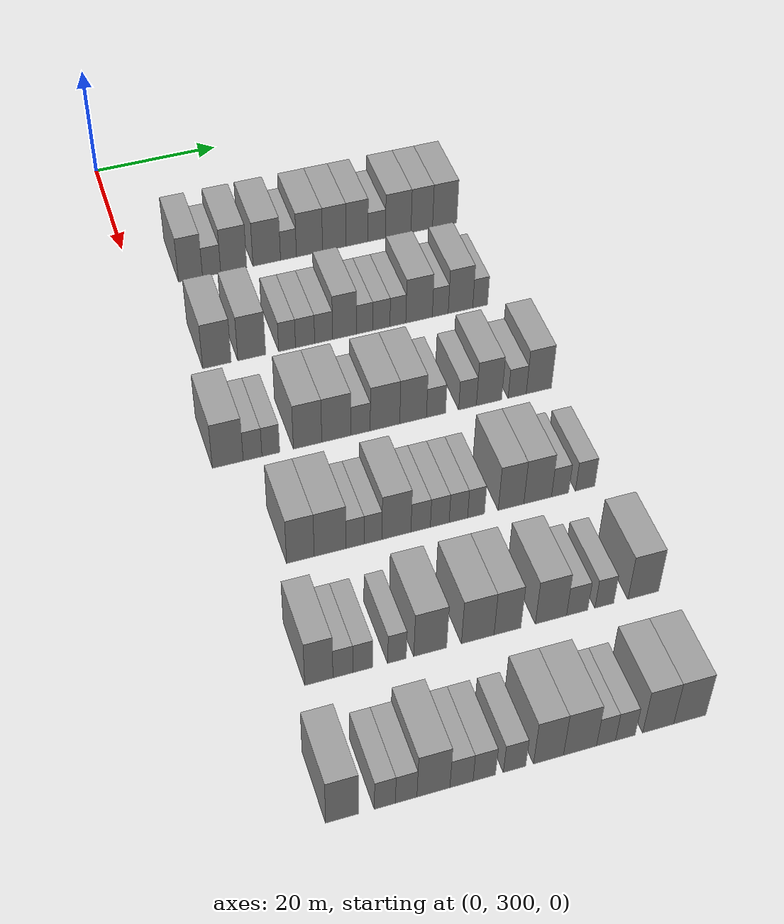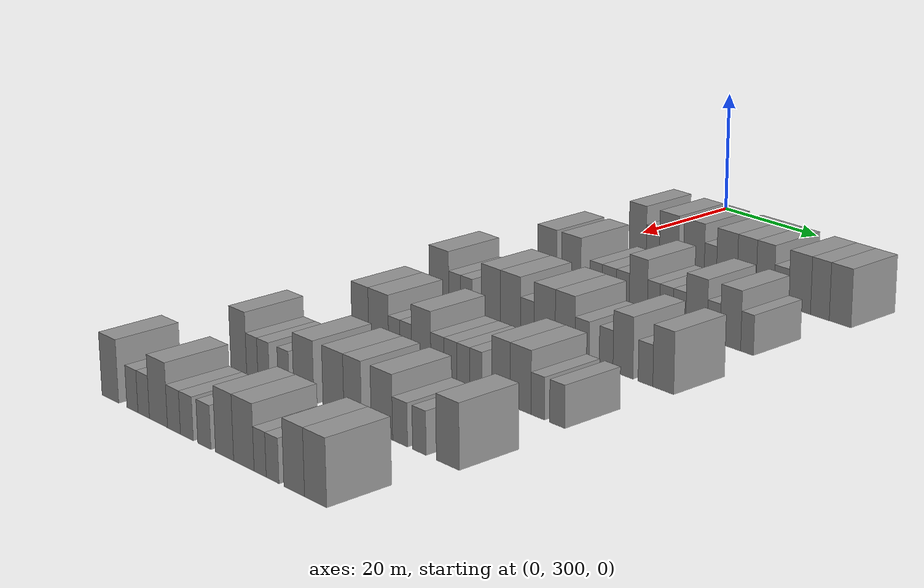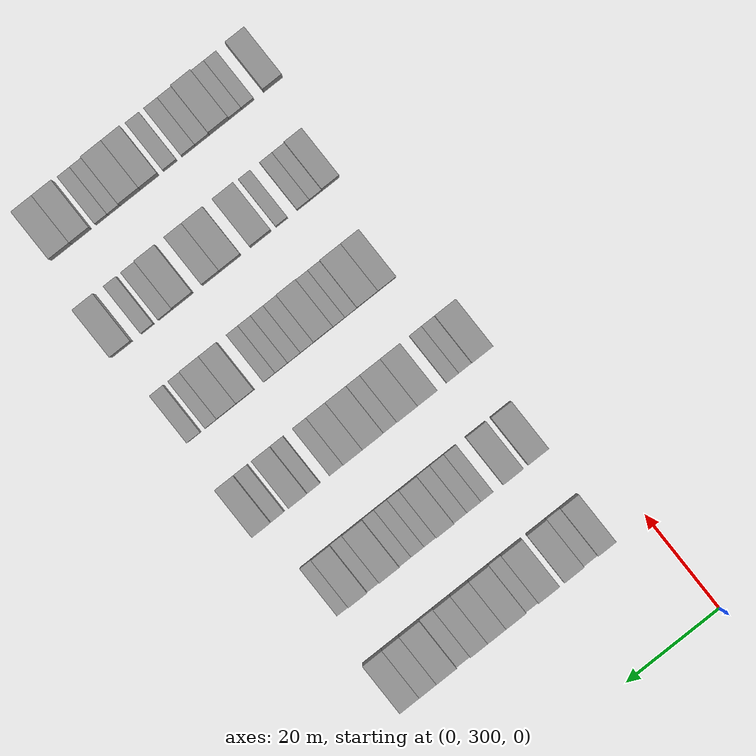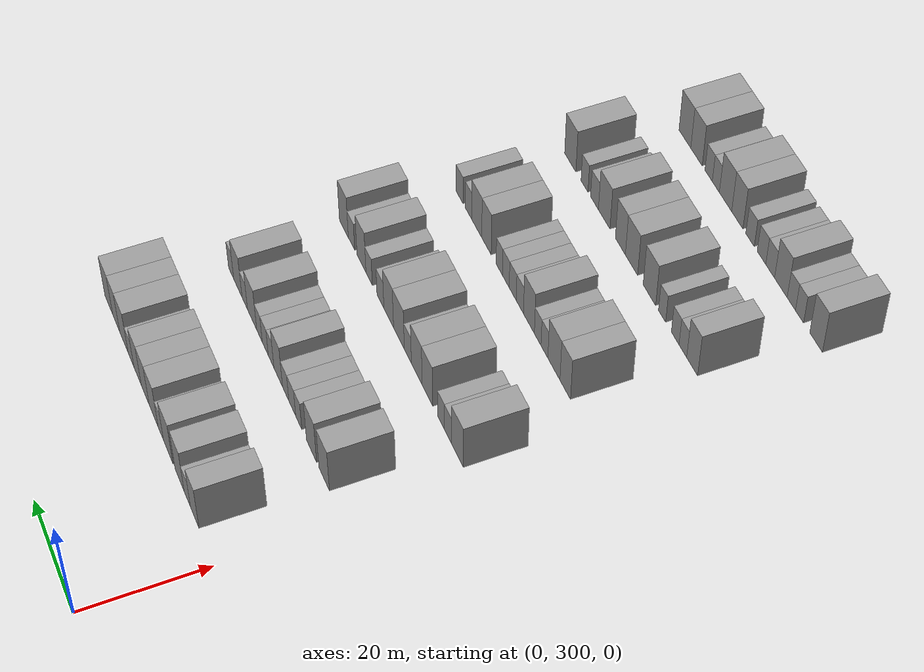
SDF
<sdf version="1.6">
 <world name="default">
  <model name="building_162">
   <static>1</static>
   <pose>25.0000 308.6975 0 0.000000 0.000000 0.000000</pose>
   <link name="link">
    <pose>0 0 4.50 0 0 0</pose>
    <collision name="collision"><geometry><box><size>10.0000 3.8196 9.0000</size></box></geometry></collision>
    <visual name="visual">
     <cast_shadows>0</cast_shadows>
     <geometry><box><size>10.0000 3.8196 9.0000</size></box></geometry>
     <material>
      <script>
       <uri>model://grey_wall/materials/scripts</uri>
       <uri>model://grey_wall/materials/textures</uri>
       <name>vrc/grey_wall</name>
      </script>
     </material>
    </visual>
   </link>
  </model>
  <model name="building_163">
   <static>1</static>
   <pose>25.0000 312.0686 0 0.000000 0.000000 0.000000</pose>
   <link name="link">
    <pose>0 0 3.00 0 0 0</pose>
    <collision name="collision"><geometry><box><size>10.0000 2.9227 6.0000</size></box></geometry></collision>
    <visual name="visual">
     <cast_shadows>0</cast_shadows>
     <geometry><box><size>10.0000 2.9227 6.0000</size></box></geometry>
     <material>
      <script>
       <uri>model://grey_wall/materials/scripts</uri>
       <uri>model://grey_wall/materials/textures</uri>
       <name>vrc/grey_wall</name>
      </script>
     </material>
    </visual>
   </link>
  </model>
  <model name="building_164">
   <static>1</static>
   <pose>25.0000 315.6222 0 0.000000 0.000000 0.000000</pose>
   <link name="link">
    <pose>0 0 4.50 0 0 0</pose>
    <collision name="collision"><geometry><box><size>10.0000 4.1845 9.0000</size></box></geometry></collision>
    <visual name="visual">
     <cast_shadows>0</cast_shadows>
     <geometry><box><size>10.0000 4.1845 9.0000</size></box></geometry>
     <material>
      <script>
       <uri>model://grey_wall/materials/scripts</uri>
       <uri>model://grey_wall/materials/textures</uri>
       <name>vrc/grey_wall</name>
      </script>
     </material>
    </visual>
   </link>
  </model>
  <model name="building_165">
   <static>1</static>
   <pose>25.0000 320.9484 0 0.000000 0.000000 0.000000</pose>
   <link name="link">
    <pose>0 0 4.50 0 0 0</pose>
    <collision name="collision"><geometry><box><size>10.0000 4.4678 9.0000</size></box></geometry></collision>
    <visual name="visual">
     <cast_shadows>0</cast_shadows>
     <geometry><box><size>10.0000 4.4678 9.0000</size></box></geometry>
     <material>
      <script>
       <uri>model://grey_wall/materials/scripts</uri>
       <uri>model://grey_wall/materials/textures</uri>
       <name>vrc/grey_wall</name>
      </script>
     </material>
    </visual>
   </link>
  </model>
  <model name="building_166">
   <static>1</static>
   <pose>25.0000 324.4764 0 0.000000 0.000000 0.000000</pose>
   <link name="link">
    <pose>0 0 3.00 0 0 0</pose>
    <collision name="collision"><geometry><box><size>10.0000 2.5881 6.0000</size></box></geometry></collision>
    <visual name="visual">
     <cast_shadows>0</cast_shadows>
     <geometry><box><size>10.0000 2.5881 6.0000</size></box></geometry>
     <material>
      <script>
       <uri>model://grey_wall/materials/scripts</uri>
       <uri>model://grey_wall/materials/textures</uri>
       <name>vrc/grey_wall</name>
      </script>
     </material>
    </visual>
   </link>
  </model>
  <model name="building_167">
   <static>1</static>
   <pose>25.0000 327.9120 0 0.000000 0.000000 0.000000</pose>
   <link name="link">
    <pose>0 0 4.50 0 0 0</pose>
    <collision name="collision"><geometry><box><size>10.0000 4.2831 9.0000</size></box></geometry></collision>
    <visual name="visual">
     <cast_shadows>0</cast_shadows>
     <geometry><box><size>10.0000 4.2831 9.0000</size></box></geometry>
     <material>
      <script>
       <uri>model://grey_wall/materials/scripts</uri>
       <uri>model://grey_wall/materials/textures</uri>
       <name>vrc/grey_wall</name>
      </script>
     </material>
    </visual>
   </link>
  </model>
  <model name="building_168">
   <static>1</static>
   <pose>25.0000 331.9893 0 0.000000 0.000000 0.000000</pose>
   <link name="link">
    <pose>0 0 4.50 0 0 0</pose>
    <collision name="collision"><geometry><box><size>10.0000 3.8714 9.0000</size></box></geometry></collision>
    <visual name="visual">
     <cast_shadows>0</cast_shadows>
     <geometry><box><size>10.0000 3.8714 9.0000</size></box></geometry>
     <material>
      <script>
       <uri>model://grey_wall/materials/scripts</uri>
       <uri>model://grey_wall/materials/textures</uri>
       <name>vrc/grey_wall</name>
      </script>
     </material>
    </visual>
   </link>
  </model>
  <model name="building_169">
   <static>1</static>
   <pose>25.0000 335.7469 0 0.000000 0.000000 0.000000</pose>
   <link name="link">
    <pose>0 0 4.50 0 0 0</pose>
    <collision name="collision"><geometry><box><size>10.0000 3.6437 9.0000</size></box></geometry></collision>
    <visual name="visual">
     <cast_shadows>0</cast_shadows>
     <geometry><box><size>10.0000 3.6437 9.0000</size></box></geometry>
     <material>
      <script>
       <uri>model://grey_wall/materials/scripts</uri>
       <uri>model://grey_wall/materials/textures</uri>
       <name>vrc/grey_wall</name>
      </script>
     </material>
    </visual>
   </link>
  </model>
  <model name="building_170">
   <static>1</static>
   <pose>25.0000 339.0179 0 0.000000 0.000000 0.000000</pose>
   <link name="link">
    <pose>0 0 3.00 0 0 0</pose>
    <collision name="collision"><geometry><box><size>10.0000 2.8984 6.0000</size></box></geometry></collision>
    <visual name="visual">
     <cast_shadows>0</cast_shadows>
     <geometry><box><size>10.0000 2.8984 6.0000</size></box></geometry>
     <material>
      <script>
       <uri>model://grey_wall/materials/scripts</uri>
       <uri>model://grey_wall/materials/textures</uri>
       <name>vrc/grey_wall</name>
      </script>
     </material>
    </visual>
   </link>
  </model>
  <model name="building_171">
   <static>1</static>
   <pose>25.0000 342.6101 0 0.000000 0.000000 0.000000</pose>
   <link name="link">
    <pose>0 0 4.50 0 0 0</pose>
    <collision name="collision"><geometry><box><size>10.0000 4.2859 9.0000</size></box></geometry></collision>
    <visual name="visual">
     <cast_shadows>0</cast_shadows>
     <geometry><box><size>10.0000 4.2859 9.0000</size></box></geometry>
     <material>
      <script>
       <uri>model://grey_wall/materials/scripts</uri>
       <uri>model://grey_wall/materials/textures</uri>
       <name>vrc/grey_wall</name>
      </script>
     </material>
    </visual>
   </link>
  </model>
  <model name="building_172">
   <static>1</static>
   <pose>25.0000 346.5654 0 0.000000 0.000000 0.000000</pose>
   <link name="link">
    <pose>0 0 4.50 0 0 0</pose>
    <collision name="collision"><geometry><box><size>10.0000 3.6248 9.0000</size></box></geometry></collision>
    <visual name="visual">
     <cast_shadows>0</cast_shadows>
     <geometry><box><size>10.0000 3.6248 9.0000</size></box></geometry>
     <material>
      <script>
       <uri>model://grey_wall/materials/scripts</uri>
       <uri>model://grey_wall/materials/textures</uri>
       <name>vrc/grey_wall</name>
      </script>
     </material>
    </visual>
   </link>
  </model>
  <model name="building_173">
   <static>1</static>
   <pose>25.0000 350.4353 0 0.000000 0.000000 0.000000</pose>
   <link name="link">
    <pose>0 0 4.50 0 0 0</pose>
    <collision name="collision"><geometry><box><size>10.0000 4.1149 9.0000</size></box></geometry></collision>
    <visual name="visual">
     <cast_shadows>0</cast_shadows>
     <geometry><box><size>10.0000 4.1149 9.0000</size></box></geometry>
     <material>
      <script>
       <uri>model://grey_wall/materials/scripts</uri>
       <uri>model://grey_wall/materials/textures</uri>
       <name>vrc/grey_wall</name>
      </script>
     </material>
    </visual>
   </link>
  </model>
  <model name="building_340">
   <static>1</static>
   <pose>44.0000 308.1091 0 0.000000 0.000000 0.000000</pose>
   <link name="link">
    <pose>0 0 4.50 0 0 0</pose>
    <collision name="collision"><geometry><box><size>10.0000 4.3474 9.0000</size></box></geometry></collision>
    <visual name="visual">
     <cast_shadows>0</cast_shadows>
     <geometry><box><size>10.0000 4.3474 9.0000</size></box></geometry>
     <material>
      <script>
       <uri>model://grey_wall/materials/scripts</uri>
       <uri>model://grey_wall/materials/textures</uri>
       <name>vrc/grey_wall</name>
      </script>
     </material>
    </visual>
   </link>
  </model>
  <model name="building_341">
   <static>1</static>
   <pose>44.0000 313.4242 0 0.000000 0.000000 0.000000</pose>
   <link name="link">
    <pose>0 0 4.50 0 0 0</pose>
    <collision name="collision"><geometry><box><size>10.0000 4.2828 9.0000</size></box></geometry></collision>
    <visual name="visual">
     <cast_shadows>0</cast_shadows>
     <geometry><box><size>10.0000 4.2828 9.0000</size></box></geometry>
     <material>
      <script>
       <uri>model://grey_wall/materials/scripts</uri>
       <uri>model://grey_wall/materials/textures</uri>
       <name>vrc/grey_wall</name>
      </script>
     </material>
    </visual>
   </link>
  </model>
  <model name="building_342">
   <static>1</static>
   <pose>44.0000 318.8696 0 0.000000 0.000000 0.000000</pose>
   <link name="link">
    <pose>0 0 3.00 0 0 0</pose>
    <collision name="collision"><geometry><box><size>10.0000 2.6080 6.0000</size></box></geometry></collision>
    <visual name="visual">
     <cast_shadows>0</cast_shadows>
     <geometry><box><size>10.0000 2.6080 6.0000</size></box></geometry>
     <material>
      <script>
       <uri>model://grey_wall/materials/scripts</uri>
       <uri>model://grey_wall/materials/textures</uri>
       <name>vrc/grey_wall</name>
      </script>
     </material>
    </visual>
   </link>
  </model>
  <model name="building_343">
   <static>1</static>
   <pose>44.0000 321.6624 0 0.000000 0.000000 0.000000</pose>
   <link name="link">
    <pose>0 0 3.00 0 0 0</pose>
    <collision name="collision"><geometry><box><size>10.0000 2.9776 6.0000</size></box></geometry></collision>
    <visual name="visual">
     <cast_shadows>0</cast_shadows>
     <geometry><box><size>10.0000 2.9776 6.0000</size></box></geometry>
     <material>
      <script>
       <uri>model://grey_wall/materials/scripts</uri>
       <uri>model://grey_wall/materials/textures</uri>
       <name>vrc/grey_wall</name>
      </script>
     </material>
    </visual>
   </link>
  </model>
  <model name="building_344">
   <static>1</static>
   <pose>44.0000 324.5473 0 0.000000 0.000000 0.000000</pose>
   <link name="link">
    <pose>0 0 3.00 0 0 0</pose>
    <collision name="collision"><geometry><box><size>10.0000 2.7922 6.0000</size></box></geometry></collision>
    <visual name="visual">
     <cast_shadows>0</cast_shadows>
     <geometry><box><size>10.0000 2.7922 6.0000</size></box></geometry>
     <material>
      <script>
       <uri>model://grey_wall/materials/scripts</uri>
       <uri>model://grey_wall/materials/textures</uri>
       <name>vrc/grey_wall</name>
      </script>
     </material>
    </visual>
   </link>
  </model>
  <model name="building_345">
   <static>1</static>
   <pose>44.0000 327.8314 0 0.000000 0.000000 0.000000</pose>
   <link name="link">
    <pose>0 0 4.50 0 0 0</pose>
    <collision name="collision"><geometry><box><size>10.0000 3.7760 9.0000</size></box></geometry></collision>
    <visual name="visual">
     <cast_shadows>0</cast_shadows>
     <geometry><box><size>10.0000 3.7760 9.0000</size></box></geometry>
     <material>
      <script>
       <uri>model://grey_wall/materials/scripts</uri>
       <uri>model://grey_wall/materials/textures</uri>
       <name>vrc/grey_wall</name>
      </script>
     </material>
    </visual>
   </link>
  </model>
  <model name="building_346">
   <static>1</static>
   <pose>44.0000 330.9851 0 0.000000 0.000000 0.000000</pose>
   <link name="link">
    <pose>0 0 3.00 0 0 0</pose>
    <collision name="collision"><geometry><box><size>10.0000 2.5315 6.0000</size></box></geometry></collision>
    <visual name="visual">
     <cast_shadows>0</cast_shadows>
     <geometry><box><size>10.0000 2.5315 6.0000</size></box></geometry>
     <material>
      <script>
       <uri>model://grey_wall/materials/scripts</uri>
       <uri>model://grey_wall/materials/textures</uri>
       <name>vrc/grey_wall</name>
      </script>
     </material>
    </visual>
   </link>
  </model>
  <model name="building_347">
   <static>1</static>
   <pose>44.0000 333.6208 0 0.000000 0.000000 0.000000</pose>
   <link name="link">
    <pose>0 0 3.00 0 0 0</pose>
    <collision name="collision"><geometry><box><size>10.0000 2.7399 6.0000</size></box></geometry></collision>
    <visual name="visual">
     <cast_shadows>0</cast_shadows>
     <geometry><box><size>10.0000 2.7399 6.0000</size></box></geometry>
     <material>
      <script>
       <uri>model://grey_wall/materials/scripts</uri>
       <uri>model://grey_wall/materials/textures</uri>
       <name>vrc/grey_wall</name>
      </script>
     </material>
    </visual>
   </link>
  </model>
  <model name="building_348">
   <static>1</static>
   <pose>44.0000 336.2511 0 0.000000 0.000000 0.000000</pose>
   <link name="link">
    <pose>0 0 3.00 0 0 0</pose>
    <collision name="collision"><geometry><box><size>10.0000 2.5208 6.0000</size></box></geometry></collision>
    <visual name="visual">
     <cast_shadows>0</cast_shadows>
     <geometry><box><size>10.0000 2.5208 6.0000</size></box></geometry>
     <material>
      <script>
       <uri>model://grey_wall/materials/scripts</uri>
       <uri>model://grey_wall/materials/textures</uri>
       <name>vrc/grey_wall</name>
      </script>
     </material>
    </visual>
   </link>
  </model>
  <model name="building_349">
   <static>1</static>
   <pose>44.0000 339.6366 0 0.000000 0.000000 0.000000</pose>
   <link name="link">
    <pose>0 0 4.50 0 0 0</pose>
    <collision name="collision"><geometry><box><size>10.0000 4.2502 9.0000</size></box></geometry></collision>
    <visual name="visual">
     <cast_shadows>0</cast_shadows>
     <geometry><box><size>10.0000 4.2502 9.0000</size></box></geometry>
     <material>
      <script>
       <uri>model://grey_wall/materials/scripts</uri>
       <uri>model://grey_wall/materials/textures</uri>
       <name>vrc/grey_wall</name>
      </script>
     </material>
    </visual>
   </link>
  </model>
  <model name="building_350">
   <static>1</static>
   <pose>44.0000 343.0381 0 0.000000 0.000000 0.000000</pose>
   <link name="link">
    <pose>0 0 3.00 0 0 0</pose>
    <collision name="collision"><geometry><box><size>10.0000 2.5529 6.0000</size></box></geometry></collision>
    <visual name="visual">
     <cast_shadows>0</cast_shadows>
     <geometry><box><size>10.0000 2.5529 6.0000</size></box></geometry>
     <material>
      <script>
       <uri>model://grey_wall/materials/scripts</uri>
       <uri>model://grey_wall/materials/textures</uri>
       <name>vrc/grey_wall</name>
      </script>
     </material>
    </visual>
   </link>
  </model>
  <model name="building_351">
   <static>1</static>
   <pose>44.0000 346.2956 0 0.000000 0.000000 0.000000</pose>
   <link name="link">
    <pose>0 0 4.50 0 0 0</pose>
    <collision name="collision"><geometry><box><size>10.0000 3.9621 9.0000</size></box></geometry></collision>
    <visual name="visual">
     <cast_shadows>0</cast_shadows>
     <geometry><box><size>10.0000 3.9621 9.0000</size></box></geometry>
     <material>
      <script>
       <uri>model://grey_wall/materials/scripts</uri>
       <uri>model://grey_wall/materials/textures</uri>
       <name>vrc/grey_wall</name>
      </script>
     </material>
    </visual>
   </link>
  </model>
  <model name="building_352">
   <static>1</static>
   <pose>44.0000 349.4900 0 0.000000 0.000000 0.000000</pose>
   <link name="link">
    <pose>0 0 3.00 0 0 0</pose>
    <collision name="collision"><geometry><box><size>10.0000 2.4267 6.0000</size></box></geometry></collision>
    <visual name="visual">
     <cast_shadows>0</cast_shadows>
     <geometry><box><size>10.0000 2.4267 6.0000</size></box></geometry>
     <material>
      <script>
       <uri>model://grey_wall/materials/scripts</uri>
       <uri>model://grey_wall/materials/textures</uri>
       <name>vrc/grey_wall</name>
      </script>
     </material>
    </visual>
   </link>
  </model>
  <model name="building_512">
   <static>1</static>
   <pose>63.0000 304.8569 0 0.000000 0.000000 0.000000</pose>
   <link name="link">
    <pose>0 0 4.50 0 0 0</pose>
    <collision name="collision"><geometry><box><size>10.0000 4.4689 9.0000</size></box></geometry></collision>
    <visual name="visual">
     <cast_shadows>0</cast_shadows>
     <geometry><box><size>10.0000 4.4689 9.0000</size></box></geometry>
     <material>
      <script>
       <uri>model://grey_wall/materials/scripts</uri>
       <uri>model://grey_wall/materials/textures</uri>
       <name>vrc/grey_wall</name>
      </script>
     </material>
    </visual>
   </link>
  </model>
  <model name="building_513">
   <static>1</static>
   <pose>63.0000 308.4543 0 0.000000 0.000000 0.000000</pose>
   <link name="link">
    <pose>0 0 3.00 0 0 0</pose>
    <collision name="collision"><geometry><box><size>10.0000 2.7259 6.0000</size></box></geometry></collision>
    <visual name="visual">
     <cast_shadows>0</cast_shadows>
     <geometry><box><size>10.0000 2.7259 6.0000</size></box></geometry>
     <material>
      <script>
       <uri>model://grey_wall/materials/scripts</uri>
       <uri>model://grey_wall/materials/textures</uri>
       <name>vrc/grey_wall</name>
      </script>
     </material>
    </visual>
   </link>
  </model>
  <model name="building_514">
   <static>1</static>
   <pose>63.0000 311.1140 0 0.000000 0.000000 0.000000</pose>
   <link name="link">
    <pose>0 0 3.00 0 0 0</pose>
    <collision name="collision"><geometry><box><size>10.0000 2.5936 6.0000</size></box></geometry></collision>
    <visual name="visual">
     <cast_shadows>0</cast_shadows>
     <geometry><box><size>10.0000 2.5936 6.0000</size></box></geometry>
     <material>
      <script>
       <uri>model://grey_wall/materials/scripts</uri>
       <uri>model://grey_wall/materials/textures</uri>
       <name>vrc/grey_wall</name>
      </script>
     </material>
    </visual>
   </link>
  </model>
  <model name="building_515">
   <static>1</static>
   <pose>63.0000 316.5032 0 0.000000 0.000000 0.000000</pose>
   <link name="link">
    <pose>0 0 4.50 0 0 0</pose>
    <collision name="collision"><geometry><box><size>10.0000 4.1848 9.0000</size></box></geometry></collision>
    <visual name="visual">
     <cast_shadows>0</cast_shadows>
     <geometry><box><size>10.0000 4.1848 9.0000</size></box></geometry>
     <material>
      <script>
       <uri>model://grey_wall/materials/scripts</uri>
       <uri>model://grey_wall/materials/textures</uri>
       <name>vrc/grey_wall</name>
      </script>
     </material>
    </visual>
   </link>
  </model>
  <model name="building_516">
   <static>1</static>
   <pose>63.0000 320.7666 0 0.000000 0.000000 0.000000</pose>
   <link name="link">
    <pose>0 0 4.50 0 0 0</pose>
    <collision name="collision"><geometry><box><size>10.0000 4.3420 9.0000</size></box></geometry></collision>
    <visual name="visual">
     <cast_shadows>0</cast_shadows>
     <geometry><box><size>10.0000 4.3420 9.0000</size></box></geometry>
     <material>
      <script>
       <uri>model://grey_wall/materials/scripts</uri>
       <uri>model://grey_wall/materials/textures</uri>
       <name>vrc/grey_wall</name>
      </script>
     </material>
    </visual>
   </link>
  </model>
  <model name="building_517">
   <static>1</static>
   <pose>63.0000 324.3682 0 0.000000 0.000000 0.000000</pose>
   <link name="link">
    <pose>0 0 3.00 0 0 0</pose>
    <collision name="collision"><geometry><box><size>10.0000 2.8613 6.0000</size></box></geometry></collision>
    <visual name="visual">
     <cast_shadows>0</cast_shadows>
     <geometry><box><size>10.0000 2.8613 6.0000</size></box></geometry>
     <material>
      <script>
       <uri>model://grey_wall/materials/scripts</uri>
       <uri>model://grey_wall/materials/textures</uri>
       <name>vrc/grey_wall</name>
      </script>
     </material>
    </visual>
   </link>
  </model>
  <model name="building_518">
   <static>1</static>
   <pose>63.0000 328.0162 0 0.000000 0.000000 0.000000</pose>
   <link name="link">
    <pose>0 0 4.50 0 0 0</pose>
    <collision name="collision"><geometry><box><size>10.0000 4.4345 9.0000</size></box></geometry></collision>
    <visual name="visual">
     <cast_shadows>0</cast_shadows>
     <geometry><box><size>10.0000 4.4345 9.0000</size></box></geometry>
     <material>
      <script>
       <uri>model://grey_wall/materials/scripts</uri>
       <uri>model://grey_wall/materials/textures</uri>
       <name>vrc/grey_wall</name>
      </script>
     </material>
    </visual>
   </link>
  </model>
  <model name="building_519">
   <static>1</static>
   <pose>63.0000 332.2534 0 0.000000 0.000000 0.000000</pose>
   <link name="link">
    <pose>0 0 4.50 0 0 0</pose>
    <collision name="collision"><geometry><box><size>10.0000 4.0400 9.0000</size></box></geometry></collision>
    <visual name="visual">
     <cast_shadows>0</cast_shadows>
     <geometry><box><size>10.0000 4.0400 9.0000</size></box></geometry>
     <material>
      <script>
       <uri>model://grey_wall/materials/scripts</uri>
       <uri>model://grey_wall/materials/textures</uri>
       <name>vrc/grey_wall</name>
      </script>
     </material>
    </visual>
   </link>
  </model>
  <model name="building_520">
   <static>1</static>
   <pose>63.0000 335.7364 0 0.000000 0.000000 0.000000</pose>
   <link name="link">
    <pose>0 0 3.00 0 0 0</pose>
    <collision name="collision"><geometry><box><size>10.0000 2.9259 6.0000</size></box></geometry></collision>
    <visual name="visual">
     <cast_shadows>0</cast_shadows>
     <geometry><box><size>10.0000 2.9259 6.0000</size></box></geometry>
     <material>
      <script>
       <uri>model://grey_wall/materials/scripts</uri>
       <uri>model://grey_wall/materials/textures</uri>
       <name>vrc/grey_wall</name>
      </script>
     </material>
    </visual>
   </link>
  </model>
  <model name="building_521">
   <static>1</static>
   <pose>63.0000 340.5581 0 0.000000 0.000000 0.000000</pose>
   <link name="link">
    <pose>0 0 3.00 0 0 0</pose>
    <collision name="collision"><geometry><box><size>10.0000 2.7175 6.0000</size></box></geometry></collision>
    <visual name="visual">
     <cast_shadows>0</cast_shadows>
     <geometry><box><size>10.0000 2.7175 6.0000</size></box></geometry>
     <material>
      <script>
       <uri>model://grey_wall/materials/scripts</uri>
       <uri>model://grey_wall/materials/textures</uri>
       <name>vrc/grey_wall</name>
      </script>
     </material>
    </visual>
   </link>
  </model>
  <model name="building_522">
   <static>1</static>
   <pose>63.0000 343.8671 0 0.000000 0.000000 0.000000</pose>
   <link name="link">
    <pose>0 0 4.50 0 0 0</pose>
    <collision name="collision"><geometry><box><size>10.0000 3.9004 9.0000</size></box></geometry></collision>
    <visual name="visual">
     <cast_shadows>0</cast_shadows>
     <geometry><box><size>10.0000 3.9004 9.0000</size></box></geometry>
     <material>
      <script>
       <uri>model://grey_wall/materials/scripts</uri>
       <uri>model://grey_wall/materials/textures</uri>
       <name>vrc/grey_wall</name>
      </script>
     </material>
    </visual>
   </link>
  </model>
  <model name="building_523">
   <static>1</static>
   <pose>63.0000 348.2247 0 0.000000 0.000000 0.000000</pose>
   <link name="link">
    <pose>0 0 3.00 0 0 0</pose>
    <collision name="collision"><geometry><box><size>10.0000 2.8149 6.0000</size></box></geometry></collision>
    <visual name="visual">
     <cast_shadows>0</cast_shadows>
     <geometry><box><size>10.0000 2.8149 6.0000</size></box></geometry>
     <material>
      <script>
       <uri>model://grey_wall/materials/scripts</uri>
       <uri>model://grey_wall/materials/textures</uri>
       <name>vrc/grey_wall</name>
      </script>
     </material>
    </visual>
   </link>
  </model>
  <model name="building_524">
   <static>1</static>
   <pose>63.0000 351.5997 0 0.000000 0.000000 0.000000</pose>
   <link name="link">
    <pose>0 0 4.50 0 0 0</pose>
    <collision name="collision"><geometry><box><size>10.0000 3.9350 9.0000</size></box></geometry></collision>
    <visual name="visual">
     <cast_shadows>0</cast_shadows>
     <geometry><box><size>10.0000 3.9350 9.0000</size></box></geometry>
     <material>
      <script>
       <uri>model://grey_wall/materials/scripts</uri>
       <uri>model://grey_wall/materials/textures</uri>
       <name>vrc/grey_wall</name>
      </script>
     </material>
    </visual>
   </link>
  </model>
  <model name="building_683">
   <static>1</static>
   <pose>82.0000 309.9607 0 0.000000 0.000000 0.000000</pose>
   <link name="link">
    <pose>0 0 4.50 0 0 0</pose>
    <collision name="collision"><geometry><box><size>10.0000 3.8386 9.0000</size></box></geometry></collision>
    <visual name="visual">
     <cast_shadows>0</cast_shadows>
     <geometry><box><size>10.0000 3.8386 9.0000</size></box></geometry>
     <material>
      <script>
       <uri>model://grey_wall/materials/scripts</uri>
       <uri>model://grey_wall/materials/textures</uri>
       <name>vrc/grey_wall</name>
      </script>
     </material>
    </visual>
   </link>
  </model>
  <model name="building_684">
   <static>1</static>
   <pose>82.0000 314.1011 0 0.000000 0.000000 0.000000</pose>
   <link name="link">
    <pose>0 0 4.50 0 0 0</pose>
    <collision name="collision"><geometry><box><size>10.0000 4.4422 9.0000</size></box></geometry></collision>
    <visual name="visual">
     <cast_shadows>0</cast_shadows>
     <geometry><box><size>10.0000 4.4422 9.0000</size></box></geometry>
     <material>
      <script>
       <uri>model://grey_wall/materials/scripts</uri>
       <uri>model://grey_wall/materials/textures</uri>
       <name>vrc/grey_wall</name>
      </script>
     </material>
    </visual>
   </link>
  </model>
  <model name="building_685">
   <static>1</static>
   <pose>82.0000 317.5993 0 0.000000 0.000000 0.000000</pose>
   <link name="link">
    <pose>0 0 3.00 0 0 0</pose>
    <collision name="collision"><geometry><box><size>10.0000 2.5542 6.0000</size></box></geometry></collision>
    <visual name="visual">
     <cast_shadows>0</cast_shadows>
     <geometry><box><size>10.0000 2.5542 6.0000</size></box></geometry>
     <material>
      <script>
       <uri>model://grey_wall/materials/scripts</uri>
       <uri>model://grey_wall/materials/textures</uri>
       <name>vrc/grey_wall</name>
      </script>
     </material>
    </visual>
   </link>
  </model>
  <model name="building_686">
   <static>1</static>
   <pose>82.0000 320.1300 0 0.000000 0.000000 0.000000</pose>
   <link name="link">
    <pose>0 0 3.00 0 0 0</pose>
    <collision name="collision"><geometry><box><size>10.0000 2.5072 6.0000</size></box></geometry></collision>
    <visual name="visual">
     <cast_shadows>0</cast_shadows>
     <geometry><box><size>10.0000 2.5072 6.0000</size></box></geometry>
     <material>
      <script>
       <uri>model://grey_wall/materials/scripts</uri>
       <uri>model://grey_wall/materials/textures</uri>
       <name>vrc/grey_wall</name>
      </script>
     </material>
    </visual>
   </link>
  </model>
  <model name="building_687">
   <static>1</static>
   <pose>82.0000 323.4529 0 0.000000 0.000000 0.000000</pose>
   <link name="link">
    <pose>0 0 4.50 0 0 0</pose>
    <collision name="collision"><geometry><box><size>10.0000 4.1386 9.0000</size></box></geometry></collision>
    <visual name="visual">
     <cast_shadows>0</cast_shadows>
     <geometry><box><size>10.0000 4.1386 9.0000</size></box></geometry>
     <material>
      <script>
       <uri>model://grey_wall/materials/scripts</uri>
       <uri>model://grey_wall/materials/textures</uri>
       <name>vrc/grey_wall</name>
      </script>
     </material>
    </visual>
   </link>
  </model>
  <model name="building_688">
   <static>1</static>
   <pose>82.0000 326.9126 0 0.000000 0.000000 0.000000</pose>
   <link name="link">
    <pose>0 0 3.00 0 0 0</pose>
    <collision name="collision"><geometry><box><size>10.0000 2.7808 6.0000</size></box></geometry></collision>
    <visual name="visual">
     <cast_shadows>0</cast_shadows>
     <geometry><box><size>10.0000 2.7808 6.0000</size></box></geometry>
     <material>
      <script>
       <uri>model://grey_wall/materials/scripts</uri>
       <uri>model://grey_wall/materials/textures</uri>
       <name>vrc/grey_wall</name>
      </script>
     </material>
    </visual>
   </link>
  </model>
  <model name="building_689">
   <static>1</static>
   <pose>82.0000 329.6565 0 0.000000 0.000000 0.000000</pose>
   <link name="link">
    <pose>0 0 3.00 0 0 0</pose>
    <collision name="collision"><geometry><box><size>10.0000 2.7070 6.0000</size></box></geometry></collision>
    <visual name="visual">
     <cast_shadows>0</cast_shadows>
     <geometry><box><size>10.0000 2.7070 6.0000</size></box></geometry>
     <material>
      <script>
       <uri>model://grey_wall/materials/scripts</uri>
       <uri>model://grey_wall/materials/textures</uri>
       <name>vrc/grey_wall</name>
      </script>
     </material>
    </visual>
   </link>
  </model>
  <model name="building_690">
   <static>1</static>
   <pose>82.0000 332.3422 0 0.000000 0.000000 0.000000</pose>
   <link name="link">
    <pose>0 0 3.00 0 0 0</pose>
    <collision name="collision"><geometry><box><size>10.0000 2.6645 6.0000</size></box></geometry></collision>
    <visual name="visual">
     <cast_shadows>0</cast_shadows>
     <geometry><box><size>10.0000 2.6645 6.0000</size></box></geometry>
     <material>
      <script>
       <uri>model://grey_wall/materials/scripts</uri>
       <uri>model://grey_wall/materials/textures</uri>
       <name>vrc/grey_wall</name>
      </script>
     </material>
    </visual>
   </link>
  </model>
  <model name="building_691">
   <static>1</static>
   <pose>82.0000 334.9056 0 0.000000 0.000000 0.000000</pose>
   <link name="link">
    <pose>0 0 3.00 0 0 0</pose>
    <collision name="collision"><geometry><box><size>10.0000 2.4622 6.0000</size></box></geometry></collision>
    <visual name="visual">
     <cast_shadows>0</cast_shadows>
     <geometry><box><size>10.0000 2.4622 6.0000</size></box></geometry>
     <material>
      <script>
       <uri>model://grey_wall/materials/scripts</uri>
       <uri>model://grey_wall/materials/textures</uri>
       <name>vrc/grey_wall</name>
      </script>
     </material>
    </visual>
   </link>
  </model>
  <model name="building_692">
   <static>1</static>
   <pose>82.0000 340.0133 0 0.000000 0.000000 0.000000</pose>
   <link name="link">
    <pose>0 0 4.50 0 0 0</pose>
    <collision name="collision"><geometry><box><size>10.0000 3.7532 9.0000</size></box></geometry></collision>
    <visual name="visual">
     <cast_shadows>0</cast_shadows>
     <geometry><box><size>10.0000 3.7532 9.0000</size></box></geometry>
     <material>
      <script>
       <uri>model://grey_wall/materials/scripts</uri>
       <uri>model://grey_wall/materials/textures</uri>
       <name>vrc/grey_wall</name>
      </script>
     </material>
    </visual>
   </link>
  </model>
  <model name="building_693">
   <static>1</static>
   <pose>82.0000 343.9332 0 0.000000 0.000000 0.000000</pose>
   <link name="link">
    <pose>0 0 4.50 0 0 0</pose>
    <collision name="collision"><geometry><box><size>10.0000 4.0864 9.0000</size></box></geometry></collision>
    <visual name="visual">
     <cast_shadows>0</cast_shadows>
     <geometry><box><size>10.0000 4.0864 9.0000</size></box></geometry>
     <material>
      <script>
       <uri>model://grey_wall/materials/scripts</uri>
       <uri>model://grey_wall/materials/textures</uri>
       <name>vrc/grey_wall</name>
      </script>
     </material>
    </visual>
   </link>
  </model>
  <model name="building_694">
   <static>1</static>
   <pose>82.0000 347.2513 0 0.000000 0.000000 0.000000</pose>
   <link name="link">
    <pose>0 0 3.00 0 0 0</pose>
    <collision name="collision"><geometry><box><size>10.0000 2.5499 6.0000</size></box></geometry></collision>
    <visual name="visual">
     <cast_shadows>0</cast_shadows>
     <geometry><box><size>10.0000 2.5499 6.0000</size></box></geometry>
     <material>
      <script>
       <uri>model://grey_wall/materials/scripts</uri>
       <uri>model://grey_wall/materials/textures</uri>
       <name>vrc/grey_wall</name>
      </script>
     </material>
    </visual>
   </link>
  </model>
  <model name="building_695">
   <static>1</static>
   <pose>82.0000 350.9714 0 0.000000 0.000000 0.000000</pose>
   <link name="link">
    <pose>0 0 3.00 0 0 0</pose>
    <collision name="collision"><geometry><box><size>10.0000 2.8904 6.0000</size></box></geometry></collision>
    <visual name="visual">
     <cast_shadows>0</cast_shadows>
     <geometry><box><size>10.0000 2.8904 6.0000</size></box></geometry>
     <material>
      <script>
       <uri>model://grey_wall/materials/scripts</uri>
       <uri>model://grey_wall/materials/textures</uri>
       <name>vrc/grey_wall</name>
      </script>
     </material>
    </visual>
   </link>
  </model>
  <model name="building_861">
   <static>1</static>
   <pose>101.0000 306.8829 0 0.000000 0.000000 0.000000</pose>
   <link name="link">
    <pose>0 0 4.50 0 0 0</pose>
    <collision name="collision"><geometry><box><size>10.0000 3.7085 9.0000</size></box></geometry></collision>
    <visual name="visual">
     <cast_shadows>0</cast_shadows>
     <geometry><box><size>10.0000 3.7085 9.0000</size></box></geometry>
     <material>
      <script>
       <uri>model://grey_wall/materials/scripts</uri>
       <uri>model://grey_wall/materials/textures</uri>
       <name>vrc/grey_wall</name>
      </script>
     </material>
    </visual>
   </link>
  </model>
  <model name="building_862">
   <static>1</static>
   <pose>101.0000 310.0461 0 0.000000 0.000000 0.000000</pose>
   <link name="link">
    <pose>0 0 3.00 0 0 0</pose>
    <collision name="collision"><geometry><box><size>10.0000 2.6180 6.0000</size></box></geometry></collision>
    <visual name="visual">
     <cast_shadows>0</cast_shadows>
     <geometry><box><size>10.0000 2.6180 6.0000</size></box></geometry>
     <material>
      <script>
       <uri>model://grey_wall/materials/scripts</uri>
       <uri>model://grey_wall/materials/textures</uri>
       <name>vrc/grey_wall</name>
      </script>
     </material>
    </visual>
   </link>
  </model>
  <model name="building_863">
   <static>1</static>
   <pose>101.0000 312.6766 0 0.000000 0.000000 0.000000</pose>
   <link name="link">
    <pose>0 0 3.00 0 0 0</pose>
    <collision name="collision"><geometry><box><size>10.0000 2.6430 6.0000</size></box></geometry></collision>
    <visual name="visual">
     <cast_shadows>0</cast_shadows>
     <geometry><box><size>10.0000 2.6430 6.0000</size></box></geometry>
     <material>
      <script>
       <uri>model://grey_wall/materials/scripts</uri>
       <uri>model://grey_wall/materials/textures</uri>
       <name>vrc/grey_wall</name>
      </script>
     </material>
    </visual>
   </link>
  </model>
  <model name="building_864">
   <static>1</static>
   <pose>101.0000 317.2483 0 0.000000 0.000000 0.000000</pose>
   <link name="link">
    <pose>0 0 3.00 0 0 0</pose>
    <collision name="collision"><geometry><box><size>10.0000 2.5005 6.0000</size></box></geometry></collision>
    <visual name="visual">
     <cast_shadows>0</cast_shadows>
     <geometry><box><size>10.0000 2.5005 6.0000</size></box></geometry>
     <material>
      <script>
       <uri>model://grey_wall/materials/scripts</uri>
       <uri>model://grey_wall/materials/textures</uri>
       <name>vrc/grey_wall</name>
      </script>
     </material>
    </visual>
   </link>
  </model>
  <model name="building_865">
   <static>1</static>
   <pose>101.0000 321.7239 0 0.000000 0.000000 0.000000</pose>
   <link name="link">
    <pose>0 0 4.50 0 0 0</pose>
    <collision name="collision"><geometry><box><size>10.0000 4.4506 9.0000</size></box></geometry></collision>
    <visual name="visual">
     <cast_shadows>0</cast_shadows>
     <geometry><box><size>10.0000 4.4506 9.0000</size></box></geometry>
     <material>
      <script>
       <uri>model://grey_wall/materials/scripts</uri>
       <uri>model://grey_wall/materials/textures</uri>
       <name>vrc/grey_wall</name>
      </script>
     </material>
    </visual>
   </link>
  </model>
  <model name="building_866">
   <static>1</static>
   <pose>101.0000 328.1807 0 0.000000 0.000000 0.000000</pose>
   <link name="link">
    <pose>0 0 4.50 0 0 0</pose>
    <collision name="collision"><geometry><box><size>10.0000 4.4630 9.0000</size></box></geometry></collision>
    <visual name="visual">
     <cast_shadows>0</cast_shadows>
     <geometry><box><size>10.0000 4.4630 9.0000</size></box></geometry>
     <material>
      <script>
       <uri>model://grey_wall/materials/scripts</uri>
       <uri>model://grey_wall/materials/textures</uri>
       <name>vrc/grey_wall</name>
      </script>
     </material>
    </visual>
   </link>
  </model>
  <model name="building_867">
   <static>1</static>
   <pose>101.0000 332.2624 0 0.000000 0.000000 0.000000</pose>
   <link name="link">
    <pose>0 0 4.50 0 0 0</pose>
    <collision name="collision"><geometry><box><size>10.0000 3.7003 9.0000</size></box></geometry></collision>
    <visual name="visual">
     <cast_shadows>0</cast_shadows>
     <geometry><box><size>10.0000 3.7003 9.0000</size></box></geometry>
     <material>
      <script>
       <uri>model://grey_wall/materials/scripts</uri>
       <uri>model://grey_wall/materials/textures</uri>
       <name>vrc/grey_wall</name>
      </script>
     </material>
    </visual>
   </link>
  </model>
  <model name="building_868">
   <static>1</static>
   <pose>101.0000 338.2871 0 0.000000 0.000000 0.000000</pose>
   <link name="link">
    <pose>0 0 4.50 0 0 0</pose>
    <collision name="collision"><geometry><box><size>10.0000 4.3491 9.0000</size></box></geometry></collision>
    <visual name="visual">
     <cast_shadows>0</cast_shadows>
     <geometry><box><size>10.0000 4.3491 9.0000</size></box></geometry>
     <material>
      <script>
       <uri>model://grey_wall/materials/scripts</uri>
       <uri>model://grey_wall/materials/textures</uri>
       <name>vrc/grey_wall</name>
      </script>
     </material>
    </visual>
   </link>
  </model>
  <model name="building_869">
   <static>1</static>
   <pose>101.0000 341.9555 0 0.000000 0.000000 0.000000</pose>
   <link name="link">
    <pose>0 0 3.00 0 0 0</pose>
    <collision name="collision"><geometry><box><size>10.0000 2.9877 6.0000</size></box></geometry></collision>
    <visual name="visual">
     <cast_shadows>0</cast_shadows>
     <geometry><box><size>10.0000 2.9877 6.0000</size></box></geometry>
     <material>
      <script>
       <uri>model://grey_wall/materials/scripts</uri>
       <uri>model://grey_wall/materials/textures</uri>
       <name>vrc/grey_wall</name>
      </script>
     </material>
    </visual>
   </link>
  </model>
  <model name="building_870">
   <static>1</static>
   <pose>101.0000 345.7819 0 0.000000 0.000000 0.000000</pose>
   <link name="link">
    <pose>0 0 3.00 0 0 0</pose>
    <collision name="collision"><geometry><box><size>10.0000 2.6651 6.0000</size></box></geometry></collision>
    <visual name="visual">
     <cast_shadows>0</cast_shadows>
     <geometry><box><size>10.0000 2.6651 6.0000</size></box></geometry>
     <material>
      <script>
       <uri>model://grey_wall/materials/scripts</uri>
       <uri>model://grey_wall/materials/textures</uri>
       <name>vrc/grey_wall</name>
      </script>
     </material>
    </visual>
   </link>
  </model>
  <model name="building_871">
   <static>1</static>
   <pose>101.0000 351.3101 0 0.000000 0.000000 0.000000</pose>
   <link name="link">
    <pose>0 0 4.50 0 0 0</pose>
    <collision name="collision"><geometry><box><size>10.0000 4.3912 9.0000</size></box></geometry></collision>
    <visual name="visual">
     <cast_shadows>0</cast_shadows>
     <geometry><box><size>10.0000 4.3912 9.0000</size></box></geometry>
     <material>
      <script>
       <uri>model://grey_wall/materials/scripts</uri>
       <uri>model://grey_wall/materials/textures</uri>
       <name>vrc/grey_wall</name>
      </script>
     </material>
    </visual>
   </link>
  </model>
  <model name="building_1034">
   <static>1</static>
   <pose>120.0000 304.0995 0 0.000000 0.000000 0.000000</pose>
   <link name="link">
    <pose>0 0 4.50 0 0 0</pose>
    <collision name="collision"><geometry><box><size>10.0000 4.0497 9.0000</size></box></geometry></collision>
    <visual name="visual">
     <cast_shadows>0</cast_shadows>
     <geometry><box><size>10.0000 4.0497 9.0000</size></box></geometry>
     <material>
      <script>
       <uri>model://grey_wall/materials/scripts</uri>
       <uri>model://grey_wall/materials/textures</uri>
       <name>vrc/grey_wall</name>
      </script>
     </material>
    </visual>
   </link>
  </model>
  <model name="building_1035">
   <static>1</static>
   <pose>120.0000 309.4417 0 0.000000 0.000000 0.000000</pose>
   <link name="link">
    <pose>0 0 3.00 0 0 0</pose>
    <collision name="collision"><geometry><box><size>10.0000 2.6345 6.0000</size></box></geometry></collision>
    <visual name="visual">
     <cast_shadows>0</cast_shadows>
     <geometry><box><size>10.0000 2.6345 6.0000</size></box></geometry>
     <material>
      <script>
       <uri>model://grey_wall/materials/scripts</uri>
       <uri>model://grey_wall/materials/textures</uri>
       <name>vrc/grey_wall</name>
      </script>
     </material>
    </visual>
   </link>
  </model>
  <model name="building_1036">
   <static>1</static>
   <pose>120.0000 312.1135 0 0.000000 0.000000 0.000000</pose>
   <link name="link">
    <pose>0 0 3.00 0 0 0</pose>
    <collision name="collision"><geometry><box><size>10.0000 2.7092 6.0000</size></box></geometry></collision>
    <visual name="visual">
     <cast_shadows>0</cast_shadows>
     <geometry><box><size>10.0000 2.7092 6.0000</size></box></geometry>
     <material>
      <script>
       <uri>model://grey_wall/materials/scripts</uri>
       <uri>model://grey_wall/materials/textures</uri>
       <name>vrc/grey_wall</name>
      </script>
     </material>
    </visual>
   </link>
  </model>
  <model name="building_1037">
   <static>1</static>
   <pose>120.0000 315.5593 0 0.000000 0.000000 0.000000</pose>
   <link name="link">
    <pose>0 0 4.50 0 0 0</pose>
    <collision name="collision"><geometry><box><size>10.0000 4.1824 9.0000</size></box></geometry></collision>
    <visual name="visual">
     <cast_shadows>0</cast_shadows>
     <geometry><box><size>10.0000 4.1824 9.0000</size></box></geometry>
     <material>
      <script>
       <uri>model://grey_wall/materials/scripts</uri>
       <uri>model://grey_wall/materials/textures</uri>
       <name>vrc/grey_wall</name>
      </script>
     </material>
    </visual>
   </link>
  </model>
  <model name="building_1038">
   <static>1</static>
   <pose>120.0000 319.1259 0 0.000000 0.000000 0.000000</pose>
   <link name="link">
    <pose>0 0 3.00 0 0 0</pose>
    <collision name="collision"><geometry><box><size>10.0000 2.9508 6.0000</size></box></geometry></collision>
    <visual name="visual">
     <cast_shadows>0</cast_shadows>
     <geometry><box><size>10.0000 2.9508 6.0000</size></box></geometry>
     <material>
      <script>
       <uri>model://grey_wall/materials/scripts</uri>
       <uri>model://grey_wall/materials/textures</uri>
       <name>vrc/grey_wall</name>
      </script>
     </material>
    </visual>
   </link>
  </model>
  <model name="building_1039">
   <static>1</static>
   <pose>120.0000 322.0494 0 0.000000 0.000000 0.000000</pose>
   <link name="link">
    <pose>0 0 3.00 0 0 0</pose>
    <collision name="collision"><geometry><box><size>10.0000 2.8961 6.0000</size></box></geometry></collision>
    <visual name="visual">
     <cast_shadows>0</cast_shadows>
     <geometry><box><size>10.0000 2.8961 6.0000</size></box></geometry>
     <material>
      <script>
       <uri>model://grey_wall/materials/scripts</uri>
       <uri>model://grey_wall/materials/textures</uri>
       <name>vrc/grey_wall</name>
      </script>
     </material>
    </visual>
   </link>
  </model>
  <model name="building_1040">
   <static>1</static>
   <pose>120.0000 325.9514 0 0.000000 0.000000 0.000000</pose>
   <link name="link">
    <pose>0 0 3.00 0 0 0</pose>
    <collision name="collision"><geometry><box><size>10.0000 2.9078 6.0000</size></box></geometry></collision>
    <visual name="visual">
     <cast_shadows>0</cast_shadows>
     <geometry><box><size>10.0000 2.9078 6.0000</size></box></geometry>
     <material>
      <script>
       <uri>model://grey_wall/materials/scripts</uri>
       <uri>model://grey_wall/materials/textures</uri>
       <name>vrc/grey_wall</name>
      </script>
     </material>
    </visual>
   </link>
  </model>
  <model name="building_1041">
   <static>1</static>
   <pose>120.0000 330.3631 0 0.000000 0.000000 0.000000</pose>
   <link name="link">
    <pose>0 0 4.50 0 0 0</pose>
    <collision name="collision"><geometry><box><size>10.0000 3.9156 9.0000</size></box></geometry></collision>
    <visual name="visual">
     <cast_shadows>0</cast_shadows>
     <geometry><box><size>10.0000 3.9156 9.0000</size></box></geometry>
     <material>
      <script>
       <uri>model://grey_wall/materials/scripts</uri>
       <uri>model://grey_wall/materials/textures</uri>
       <name>vrc/grey_wall</name>
      </script>
     </material>
    </visual>
   </link>
  </model>
  <model name="building_1042">
   <static>1</static>
   <pose>120.0000 334.4915 0 0.000000 0.000000 0.000000</pose>
   <link name="link">
    <pose>0 0 4.50 0 0 0</pose>
    <collision name="collision"><geometry><box><size>10.0000 4.3412 9.0000</size></box></geometry></collision>
    <visual name="visual">
     <cast_shadows>0</cast_shadows>
     <geometry><box><size>10.0000 4.3412 9.0000</size></box></geometry>
     <material>
      <script>
       <uri>model://grey_wall/materials/scripts</uri>
       <uri>model://grey_wall/materials/textures</uri>
       <name>vrc/grey_wall</name>
      </script>
     </material>
    </visual>
   </link>
  </model>
  <model name="building_1043">
   <static>1</static>
   <pose>120.0000 337.9199 0 0.000000 0.000000 0.000000</pose>
   <link name="link">
    <pose>0 0 3.00 0 0 0</pose>
    <collision name="collision"><geometry><box><size>10.0000 2.5157 6.0000</size></box></geometry></collision>
    <visual name="visual">
     <cast_shadows>0</cast_shadows>
     <geometry><box><size>10.0000 2.5157 6.0000</size></box></geometry>
     <material>
      <script>
       <uri>model://grey_wall/materials/scripts</uri>
       <uri>model://grey_wall/materials/textures</uri>
       <name>vrc/grey_wall</name>
      </script>
     </material>
    </visual>
   </link>
  </model>
  <model name="building_1044">
   <static>1</static>
   <pose>120.0000 340.4915 0 0.000000 0.000000 0.000000</pose>
   <link name="link">
    <pose>0 0 3.00 0 0 0</pose>
    <collision name="collision"><geometry><box><size>10.0000 2.6275 6.0000</size></box></geometry></collision>
    <visual name="visual">
     <cast_shadows>0</cast_shadows>
     <geometry><box><size>10.0000 2.6275 6.0000</size></box></geometry>
     <material>
      <script>
       <uri>model://grey_wall/materials/scripts</uri>
       <uri>model://grey_wall/materials/textures</uri>
       <name>vrc/grey_wall</name>
      </script>
     </material>
    </visual>
   </link>
  </model>
  <model name="building_1045">
   <static>1</static>
   <pose>120.0000 344.8848 0 0.000000 0.000000 0.000000</pose>
   <link name="link">
    <pose>0 0 4.50 0 0 0</pose>
    <collision name="collision"><geometry><box><size>10.0000 4.1591 9.0000</size></box></geometry></collision>
    <visual name="visual">
     <cast_shadows>0</cast_shadows>
     <geometry><box><size>10.0000 4.1591 9.0000</size></box></geometry>
     <material>
      <script>
       <uri>model://grey_wall/materials/scripts</uri>
       <uri>model://grey_wall/materials/textures</uri>
       <name>vrc/grey_wall</name>
      </script>
     </material>
    </visual>
   </link>
  </model>
  <model name="building_1046">
   <static>1</static>
   <pose>120.0000 349.1427 0 0.000000 0.000000 0.000000</pose>
   <link name="link">
    <pose>0 0 4.50 0 0 0</pose>
    <collision name="collision"><geometry><box><size>10.0000 4.3568 9.0000</size></box></geometry></collision>
    <visual name="visual">
     <cast_shadows>0</cast_shadows>
     <geometry><box><size>10.0000 4.3568 9.0000</size></box></geometry>
     <material>
      <script>
       <uri>model://grey_wall/materials/scripts</uri>
       <uri>model://grey_wall/materials/textures</uri>
       <name>vrc/grey_wall</name>
      </script>
     </material>
    </visual>
   </link>
  </model>
 </world>
</sdf>
